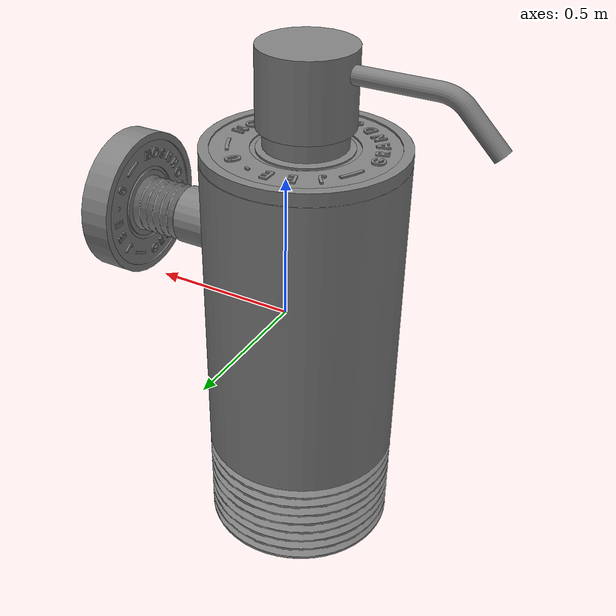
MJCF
<?xml version='1.0' encoding='UTF-8'?>
<mujoco model="partnet_dba97c73-17e9-4f08-a08b-4cfef08ba671">
  <compiler angle="radian"/>
  <asset>
    <mesh name="original_97" content_type="model/obj" file="textured_objs/original_97.obj"/>
    <mesh name="original_94" content_type="model/obj" file="textured_objs/original_94.obj"/>
    <mesh name="original_95" content_type="model/obj" file="textured_objs/original_95.obj"/>
    <mesh name="original_47" content_type="model/obj" file="textured_objs/original_47.obj"/>
    <mesh name="original_29" content_type="model/obj" file="textured_objs/original_29.obj"/>
    <mesh name="original_100" content_type="model/obj" file="textured_objs/original_100.obj"/>
    <mesh name="original_21" content_type="model/obj" file="textured_objs/original_21.obj"/>
    <mesh name="original_30" content_type="model/obj" file="textured_objs/original_30.obj"/>
    <mesh name="original_36" content_type="model/obj" file="textured_objs/original_36.obj"/>
    <mesh name="original_41" content_type="model/obj" file="textured_objs/original_41.obj"/>
    <mesh name="original_28" content_type="model/obj" file="textured_objs/original_28.obj"/>
    <mesh name="original_96" content_type="model/obj" file="textured_objs/original_96.obj"/>
    <mesh name="original_64" content_type="model/obj" file="textured_objs/original_64.obj"/>
    <mesh name="original_43" content_type="model/obj" file="textured_objs/original_43.obj"/>
    <mesh name="original_71" content_type="model/obj" file="textured_objs/original_71.obj"/>
    <mesh name="original_52" content_type="model/obj" file="textured_objs/original_52.obj"/>
    <mesh name="original_26" content_type="model/obj" file="textured_objs/original_26.obj"/>
    <mesh name="original_4" content_type="model/obj" file="textured_objs/original_4.obj"/>
    <mesh name="original_44" content_type="model/obj" file="textured_objs/original_44.obj"/>
    <mesh name="original_16" content_type="model/obj" file="textured_objs/original_16.obj"/>
    <mesh name="original_86" content_type="model/obj" file="textured_objs/original_86.obj"/>
    <mesh name="original_8" content_type="model/obj" file="textured_objs/original_8.obj"/>
    <mesh name="original_13" content_type="model/obj" file="textured_objs/original_13.obj"/>
    <mesh name="original_9" content_type="model/obj" file="textured_objs/original_9.obj"/>
    <mesh name="original_45" content_type="model/obj" file="textured_objs/original_45.obj"/>
    <mesh name="original_35" content_type="model/obj" file="textured_objs/original_35.obj"/>
    <mesh name="original_39" content_type="model/obj" file="textured_objs/original_39.obj"/>
    <mesh name="original_59" content_type="model/obj" file="textured_objs/original_59.obj"/>
    <mesh name="original_5" content_type="model/obj" file="textured_objs/original_5.obj"/>
    <mesh name="original_77" content_type="model/obj" file="textured_objs/original_77.obj"/>
    <mesh name="original_54" content_type="model/obj" file="textured_objs/original_54.obj"/>
    <mesh name="original_63" content_type="model/obj" file="textured_objs/original_63.obj"/>
    <mesh name="original_87" content_type="model/obj" file="textured_objs/original_87.obj"/>
    <mesh name="original_51" content_type="model/obj" file="textured_objs/original_51.obj"/>
    <mesh name="original_55" content_type="model/obj" file="textured_objs/original_55.obj"/>
    <mesh name="original_50" content_type="model/obj" file="textured_objs/original_50.obj"/>
    <mesh name="original_6" content_type="model/obj" file="textured_objs/original_6.obj"/>
    <mesh name="original_31" content_type="model/obj" file="textured_objs/original_31.obj"/>
    <mesh name="original_85" content_type="model/obj" file="textured_objs/original_85.obj"/>
    <mesh name="original_76" content_type="model/obj" file="textured_objs/original_76.obj"/>
    <mesh name="original_72" content_type="model/obj" file="textured_objs/original_72.obj"/>
    <mesh name="original_99" content_type="model/obj" file="textured_objs/original_99.obj"/>
    <mesh name="original_62" content_type="model/obj" file="textured_objs/original_62.obj"/>
    <mesh name="original_75" content_type="model/obj" file="textured_objs/original_75.obj"/>
    <mesh name="original_23" content_type="model/obj" file="textured_objs/original_23.obj"/>
    <mesh name="original_66" content_type="model/obj" file="textured_objs/original_66.obj"/>
    <mesh name="original_67" content_type="model/obj" file="textured_objs/original_67.obj"/>
    <mesh name="original_69" content_type="model/obj" file="textured_objs/original_69.obj"/>
    <mesh name="original_11" content_type="model/obj" file="textured_objs/original_11.obj"/>
    <mesh name="original_38" content_type="model/obj" file="textured_objs/original_38.obj"/>
    <mesh name="original_80" content_type="model/obj" file="textured_objs/original_80.obj"/>
    <mesh name="original_34" content_type="model/obj" file="textured_objs/original_34.obj"/>
    <mesh name="original_18" content_type="model/obj" file="textured_objs/original_18.obj"/>
    <mesh name="original_70" content_type="model/obj" file="textured_objs/original_70.obj"/>
    <mesh name="original_74" content_type="model/obj" file="textured_objs/original_74.obj"/>
    <mesh name="original_91" content_type="model/obj" file="textured_objs/original_91.obj"/>
    <mesh name="original_25" content_type="model/obj" file="textured_objs/original_25.obj"/>
    <mesh name="original_17" content_type="model/obj" file="textured_objs/original_17.obj"/>
    <mesh name="original_92" content_type="model/obj" file="textured_objs/original_92.obj"/>
    <mesh name="original_24" content_type="model/obj" file="textured_objs/original_24.obj"/>
    <mesh name="original_20" content_type="model/obj" file="textured_objs/original_20.obj"/>
    <mesh name="original_32" content_type="model/obj" file="textured_objs/original_32.obj"/>
    <mesh name="original_53" content_type="model/obj" file="textured_objs/original_53.obj"/>
    <mesh name="original_7" content_type="model/obj" file="textured_objs/original_7.obj"/>
    <mesh name="original_101" content_type="model/obj" file="textured_objs/original_101.obj"/>
    <mesh name="original_1" content_type="model/obj" file="textured_objs/original_1.obj"/>
    <mesh name="original_81" content_type="model/obj" file="textured_objs/original_81.obj"/>
    <mesh name="original_84" content_type="model/obj" file="textured_objs/original_84.obj"/>
    <mesh name="original_78" content_type="model/obj" file="textured_objs/original_78.obj"/>
    <mesh name="original_89" content_type="model/obj" file="textured_objs/original_89.obj"/>
    <mesh name="original_14" content_type="model/obj" file="textured_objs/original_14.obj"/>
    <mesh name="original_82" content_type="model/obj" file="textured_objs/original_82.obj"/>
    <mesh name="original_60" content_type="model/obj" file="textured_objs/original_60.obj"/>
    <mesh name="original_90" content_type="model/obj" file="textured_objs/original_90.obj"/>
    <mesh name="original_40" content_type="model/obj" file="textured_objs/original_40.obj"/>
    <mesh name="original_46" content_type="model/obj" file="textured_objs/original_46.obj"/>
    <mesh name="original_57" content_type="model/obj" file="textured_objs/original_57.obj"/>
  </asset>
  <worldbody>
    <body name="base">
      <body name="link_2" quat="0.5 0.5 -0.5 -0.5">
        <geom type="mesh" mesh="original_29"/>
        <geom type="mesh" mesh="original_100"/>
        <geom type="mesh" mesh="original_21"/>
        <geom type="mesh" mesh="original_30"/>
        <geom type="mesh" mesh="original_36"/>
        <geom type="mesh" mesh="original_41"/>
        <geom type="mesh" mesh="original_28"/>
        <geom type="mesh" mesh="original_96"/>
        <geom type="mesh" mesh="original_64"/>
        <geom type="mesh" mesh="original_43"/>
        <geom type="mesh" mesh="original_71"/>
        <geom type="mesh" mesh="original_52"/>
        <geom type="mesh" mesh="original_26"/>
        <geom type="mesh" mesh="original_4"/>
        <geom type="mesh" mesh="original_44"/>
        <geom type="mesh" mesh="original_16"/>
        <geom type="mesh" mesh="original_86"/>
        <geom type="mesh" mesh="original_8"/>
        <geom type="mesh" mesh="original_13"/>
        <geom type="mesh" mesh="original_9"/>
        <geom type="mesh" mesh="original_45"/>
        <geom type="mesh" mesh="original_35"/>
        <geom type="mesh" mesh="original_39"/>
        <geom type="mesh" mesh="original_59"/>
        <geom type="mesh" mesh="original_5"/>
        <geom type="mesh" mesh="original_77"/>
        <geom type="mesh" mesh="original_54"/>
        <geom type="mesh" mesh="original_63"/>
        <geom type="mesh" mesh="original_87"/>
        <geom type="mesh" mesh="original_51"/>
        <geom type="mesh" mesh="original_55"/>
        <geom type="mesh" mesh="original_50"/>
        <geom type="mesh" mesh="original_6"/>
        <geom type="mesh" mesh="original_31"/>
        <geom type="mesh" mesh="original_85"/>
        <geom type="mesh" mesh="original_76"/>
        <geom type="mesh" mesh="original_72"/>
        <geom type="mesh" mesh="original_99"/>
        <geom type="mesh" mesh="original_62"/>
        <geom type="mesh" mesh="original_75"/>
        <geom type="mesh" mesh="original_23"/>
        <geom type="mesh" mesh="original_66"/>
        <geom type="mesh" mesh="original_67"/>
        <geom type="mesh" mesh="original_69"/>
        <geom type="mesh" mesh="original_11"/>
        <geom type="mesh" mesh="original_38"/>
        <geom type="mesh" mesh="original_80"/>
        <geom type="mesh" mesh="original_34"/>
        <geom type="mesh" mesh="original_18"/>
        <geom type="mesh" mesh="original_70"/>
        <geom type="mesh" mesh="original_74"/>
        <geom type="mesh" mesh="original_91"/>
        <geom type="mesh" mesh="original_25"/>
        <geom type="mesh" mesh="original_17"/>
        <geom type="mesh" mesh="original_92"/>
        <geom type="mesh" mesh="original_24"/>
        <geom type="mesh" mesh="original_20"/>
        <geom type="mesh" mesh="original_32"/>
        <geom type="mesh" mesh="original_53"/>
        <geom type="mesh" mesh="original_7"/>
        <geom type="mesh" mesh="original_101"/>
        <geom type="mesh" mesh="original_1"/>
        <geom type="mesh" mesh="original_81"/>
        <geom type="mesh" mesh="original_84"/>
        <geom type="mesh" mesh="original_78"/>
        <geom type="mesh" mesh="original_89"/>
        <geom type="mesh" mesh="original_14"/>
        <geom type="mesh" mesh="original_82"/>
        <geom type="mesh" mesh="original_60"/>
        <geom type="mesh" mesh="original_90"/>
        <geom type="mesh" mesh="original_40"/>
        <geom type="mesh" mesh="original_46"/>
        <geom type="mesh" mesh="original_57"/>
        <body name="link_1_helper" pos="0.0113771 0 0.0623951">
          <inertial pos="0 0 0" mass="1e-06" diaginertia="1e-10 1e-10 1e-10"/>
          <joint name="joint_4" pos="0 0 0" axis="0 1 0" type="slide" range="0 0.02"/>
          <body name="link_1">
            <joint name="joint_1" pos="0 0 0" axis="0 -1 0"/>
            <geom pos="-0.0113771 0 -0.0623951" quat="1 0 0 0" type="mesh" mesh="original_47"/>
            <body name="link_0_helper" pos="7.53962e-05 0 -9.60861e-08">
              <inertial pos="0 0 0" mass="1e-06" diaginertia="1e-10 1e-10 1e-10"/>
              <joint name="joint_3" pos="0 0 0" axis="0 -1 0" type="slide" range="0 0.04"/>
              <body name="link_0">
                <joint name="joint_0" pos="0 0 0" axis="0 1 0"/>
                <geom pos="-0.0114525 0 -0.062395" quat="1 0 0 0" type="mesh" mesh="original_97"/>
                <geom pos="-0.0114525 0 -0.062395" type="mesh" mesh="original_94"/>
                <geom pos="-0.0114525 0 -0.062395" quat="1 0 0 0" type="mesh" mesh="original_95"/>
              </body>
            </body>
          </body>
        </body>
      </body>
    </body>
  </worldbody>
</mujoco>
